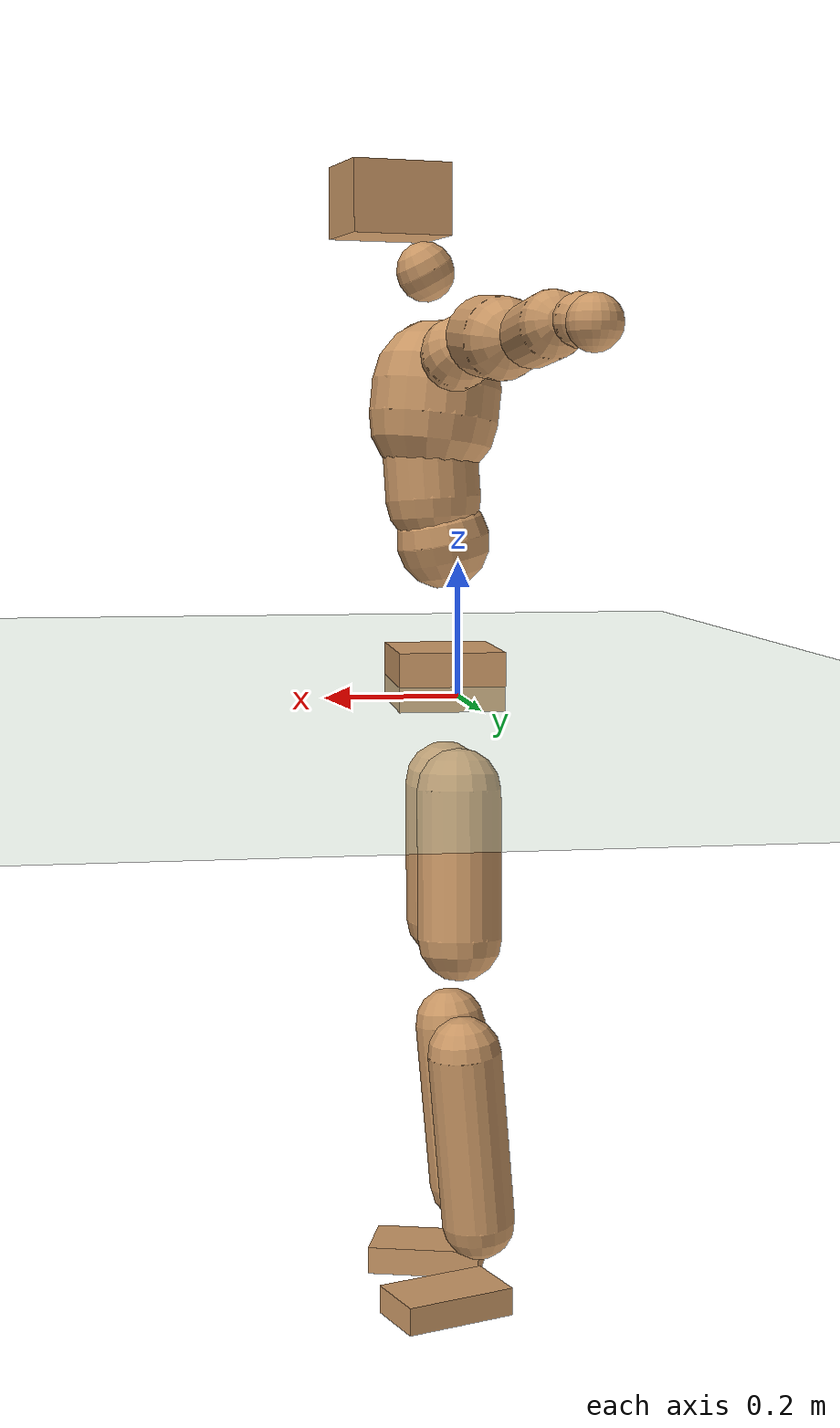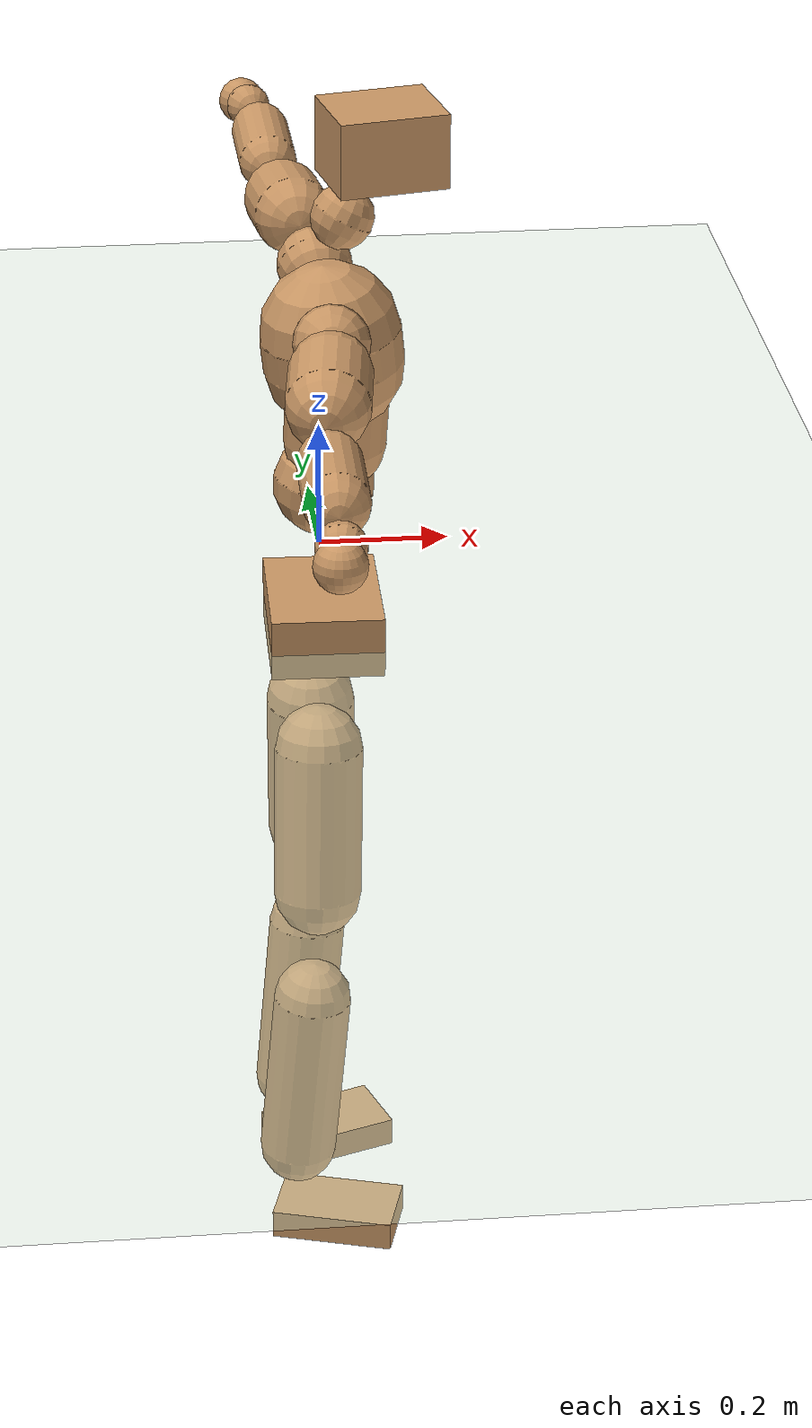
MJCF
<mujoco model="humanoid">
  <compiler coordinate="local" angle="radian"/>
  <default>
    <joint damping="0.0" armature="0.01" stiffness="0.0" limited="true"/>
    <geom conaffinity="1" condim="3" contype="7" margin="0.001" rgba="0.8 0.6 .4 1"/>
  </default>
  <asset>
    <texture type="skybox" builtin="gradient" rgb1=".4 .5 .6" rgb2="0 0 0" width="100" height="100"/>
    <texture builtin="flat" height="1278" mark="cross" markrgb="1 1 1" name="texgeom" random="0.01" rgb1="0.8 0.6 0.4" rgb2="0.8 0.6 0.4" type="cube" width="127"/>
    <texture builtin="checker" height="100" name="texplane" rgb1="0 0 0" rgb2="0.8 0.8 0.8" type="2d" width="100"/>
    <material name="MatPlane" reflectance="0.5" shininess="1" specular="1" texrepeat="60 60" texture="texplane"/>
    <material name="geom" texture="texgeom" texuniform="true"/>
  </asset>
  <worldbody>
    <light cutoff="100" diffuse="1 1 1" dir="-0 0 -1.3" directional="true" exponent="1" pos="0 0 1.3" specular=".1 .1 .1"/>
    <geom conaffinity="1" condim="3" name="floor" pos="0 0 0" rgba="0.8 0.9 0.8 1" size="100 100 .2" type="plane" material="MatPlane"/>
    <body name="Pelvis" pos="-0.004 -0.2593 0.014">
      <freejoint name="Pelvis"/>
      <geom type="box" contype="1" conaffinity="1" density="5359.374324" pos="-0.0140 0.0003 -0.0092" size="0.0839 0.1086 0.0465" quat="0.9999 0.0000 0.0000 -0.0106" name="Pelvis"/>
      <body name="L_Hip" pos="-0.0289 0.0594 -0.089">
        <joint name="L_Hip_x" type="hinge" pos="0 0 0" axis="1 0 0" stiffness="1600" damping="160" armature="0.02" range="-180.0000 180.0000"/>
        <joint name="L_Hip_y" type="hinge" pos="0 0 0" axis="0 1 0" stiffness="1600" damping="160" armature="0.02" range="-180.0000 180.0000"/>
        <joint name="L_Hip_z" type="hinge" pos="0 0 0" axis="0 0 1" stiffness="1600" damping="160" armature="0.02" range="-180.0000 180.0000"/>
        <geom type="capsule" contype="1" conaffinity="1" density="2040.816327" size="0.0674" fromto="0.0013 0.0113 -0.0968 0.0043 0.0389 -0.3335" name="L_Hip"/>
        <body name="L_Knee" pos="0.0056 0.0501 -0.4303">
          <joint name="L_Knee_x" type="hinge" pos="0 0 0" axis="1 0 0" stiffness="1600" damping="160" armature="0.02" range="-180.0000 180.0000"/>
          <joint name="L_Knee_y" type="hinge" pos="0 0 0" axis="0 1 0" stiffness="1600" damping="160" armature="0.02" range="-180.0000 180.0000"/>
          <joint name="L_Knee_z" type="hinge" pos="0 0 0" axis="0 0 1" stiffness="1600" damping="160" armature="0.02" range="-180.0000 180.0000"/>
          <geom type="capsule" contype="1" conaffinity="1" density="1234.567901" size="0.0596" fromto="-0.0078 -0.0028 -0.0892 -0.0328 -0.0120 -0.3758" name="L_Knee"/>
          <body name="L_Ankle" pos="-0.0406 -0.0148 -0.465">
            <joint name="L_Ankle_x" type="hinge" pos="0 0 0" axis="1 0 0" stiffness="1600" damping="160" armature="0.02" range="-180.0000 180.0000"/>
            <joint name="L_Ankle_y" type="hinge" pos="0 0 0" axis="0 1 0" stiffness="1600" damping="160" armature="0.02" range="-180.0000 180.0000"/>
            <joint name="L_Ankle_z" type="hinge" pos="0 0 0" axis="0 0 1" stiffness="1600" damping="160" armature="0.02" range="-180.0000 180.0000"/>
            <geom type="box" contype="1" conaffinity="1" density="999.999977" pos="0.0642 0.0219 -0.0328" size="0.0929 0.0549 0.0229" quat="0.9865 0.0000 0.0000 0.1636" name="L_Ankle"/>
            <body name="L_Toe" pos="0.1283 0.0438 -0.0656">
              <joint name="L_Toe_x" type="hinge" pos="0 0 0" axis="1 0 0" stiffness="1000" damping="100" armature="0.02" range="-180.0000 180.0000"/>
              <joint name="L_Toe_y" type="hinge" pos="0 0 0" axis="0 1 0" stiffness="1000" damping="100" armature="0.02" range="-180.0000 180.0000"/>
              <joint name="L_Toe_z" type="hinge" pos="0 0 0" axis="0 0 1" stiffness="1000" damping="100" armature="0.02" range="-180.0000 180.0000"/>
              <geom type="box" contype="1" conaffinity="1" density="7864163.116314" pos="0.0000 0.0000 0.0339" size="0.0011 0.0027 0.0012" quat="0.9858 0.0000 0.0000 0.1681" name="L_Toe"/>
            </body>
          </body>
        </body>
      </body>
      <body name="R_Hip" pos="-0.026 -0.0623 -0.0965">
        <joint name="R_Hip_x" type="hinge" pos="0 0 0" axis="1 0 0" stiffness="1600" damping="160" armature="0.02" range="-180.0000 180.0000"/>
        <joint name="R_Hip_y" type="hinge" pos="0 0 0" axis="0 1 0" stiffness="1600" damping="160" armature="0.02" range="-180.0000 180.0000"/>
        <joint name="R_Hip_z" type="hinge" pos="0 0 0" axis="0 0 1" stiffness="1600" damping="160" armature="0.02" range="-180.0000 180.0000"/>
        <geom type="capsule" contype="1" conaffinity="1" density="2040.816327" size="0.0664" fromto="-0.0019 -0.0111 -0.0958 -0.0068 -0.0385 -0.3328" name="R_Hip"/>
        <body name="R_Knee" pos="-0.0087 -0.0496 -0.4286">
          <joint name="R_Knee_x" type="hinge" pos="0 0 0" axis="1 0 0" stiffness="1600" damping="160" armature="0.02" range="-180.0000 180.0000"/>
          <joint name="R_Knee_y" type="hinge" pos="0 0 0" axis="0 1 0" stiffness="1600" damping="160" armature="0.02" range="-180.0000 180.0000"/>
          <joint name="R_Knee_z" type="hinge" pos="0 0 0" axis="0 0 1" stiffness="1600" damping="160" armature="0.02" range="-180.0000 180.0000"/>
          <geom type="capsule" contype="1" conaffinity="1" density="1234.567901" size="0.0591" fromto="-0.0071 0.0041 -0.0887 -0.0299 0.0174 -0.3718" name="R_Knee"/>
          <body name="R_Ankle" pos="-0.037 0.0215 -0.4606">
            <joint name="R_Ankle_x" type="hinge" pos="0 0 0" axis="1 0 0" stiffness="1600" damping="160" armature="0.02" range="-180.0000 180.0000"/>
            <joint name="R_Ankle_y" type="hinge" pos="0 0 0" axis="0 1 0" stiffness="1600" damping="160" armature="0.02" range="-180.0000 180.0000"/>
            <joint name="R_Ankle_z" type="hinge" pos="0 0 0" axis="0 0 1" stiffness="1600" damping="160" armature="0.02" range="-180.0000 180.0000"/>
            <geom type="box" contype="1" conaffinity="1" density="1000.000035" pos="0.0688 -0.0202 -0.0341" size="0.0945 0.055 0.0229" quat="0.9898 0.0000 0.0000 -0.1424" name="R_Ankle"/>
            <body name="R_Toe" pos="0.1375 -0.0404 -0.0683">
              <joint name="R_Toe_x" type="hinge" pos="0 0 0" axis="1 0 0" stiffness="1000" damping="100" armature="0.02" range="-180.0000 180.0000"/>
              <joint name="R_Toe_y" type="hinge" pos="0 0 0" axis="0 1 0" stiffness="1000" damping="100" armature="0.02" range="-180.0000 180.0000"/>
              <joint name="R_Toe_z" type="hinge" pos="0 0 0" axis="0 0 1" stiffness="1000" damping="100" armature="0.02" range="-180.0000 180.0000"/>
              <geom type="box" contype="1" conaffinity="1" density="7974562.350913" pos="0.0000 0.0000 0.0357" size="0.0011 0.0026 0.0012" quat="0.9910 0.0000 0.0000 -0.1339" name="R_Toe"/>
            </body>
          </body>
        </body>
      </body>
      <body name="Torso" pos="-0.0294 0.0047 0.1301">
        <joint name="Torso_x" type="hinge" pos="0 0 0" axis="1 0 0" stiffness="2000" damping="200" armature="0.02" range="-180.0000 180.0000"/>
        <joint name="Torso_y" type="hinge" pos="0 0 0" axis="0 1 0" stiffness="2000" damping="200" armature="0.02" range="-180.0000 180.0000"/>
        <joint name="Torso_z" type="hinge" pos="0 0 0" axis="0 0 1" stiffness="2000" damping="200" armature="0.02" range="-180.0000 180.0000"/>
        <geom type="capsule" contype="1" conaffinity="1" density="2040.816327" size="0.0753" fromto="0.0170 0.0023 0.0776 0.0174 0.0024 0.0795" name="Torso"/>
        <body name="Spine" pos="0.0344 0.0048 0.1571">
          <joint name="Spine_x" type="hinge" pos="0 0 0" axis="1 0 0" stiffness="2000" damping="200" armature="0.02" range="-180.0000 180.0000"/>
          <joint name="Spine_y" type="hinge" pos="0 0 0" axis="0 1 0" stiffness="2000" damping="200" armature="0.02" range="-180.0000 180.0000"/>
          <joint name="Spine_z" type="hinge" pos="0 0 0" axis="0 0 1" stiffness="2000" damping="200" armature="0.02" range="-180.0000 180.0000"/>
          <geom type="capsule" contype="1" conaffinity="1" density="2040.816327" size="0.0762" fromto="0.0047 -0.0024 0.0760 -0.0008 0.0004 -0.0123" name="Spine"/>
          <body name="Chest" pos="0.0039 -0.002 0.0638">
            <joint name="Chest_x" type="hinge" pos="0 0 0" axis="1 0 0" stiffness="2000" damping="200" armature="0.02" range="-180.0000 180.0000"/>
            <joint name="Chest_y" type="hinge" pos="0 0 0" axis="0 1 0" stiffness="2000" damping="200" armature="0.02" range="-180.0000 180.0000"/>
            <joint name="Chest_z" type="hinge" pos="0 0 0" axis="0 0 1" stiffness="2000" damping="200" armature="0.02" range="-180.0000 180.0000"/>
            <geom type="capsule" contype="1" conaffinity="1" density="2040.816327" size="0.1034" fromto="-0.0116 -0.0060 0.1025 -0.0059 -0.0030 0.0517" name="Chest"/>
            <body name="Neck" pos="-0.0227 -0.0163 0.227">
              <joint name="Neck_x" type="hinge" pos="0 0 0" axis="1 0 0" stiffness="1000" damping="100" armature="0.02" range="-180.0000 180.0000"/>
              <joint name="Neck_y" type="hinge" pos="0 0 0" axis="0 1 0" stiffness="1000" damping="100" armature="0.02" range="-180.0000 180.0000"/>
              <joint name="Neck_z" type="hinge" pos="0 0 0" axis="0 0 1" stiffness="1000" damping="100" armature="0.02" range="-180.0000 180.0000"/>
              <geom type="capsule" contype="1" conaffinity="1" density="1000" size="0.0461" fromto="0.0276 0.0047 0.0517 0.0286 0.0049 0.0535" name="Neck"/>
              <body name="Head" pos="0.0562 0.0096 0.1052">
                <joint name="Head_x" type="hinge" pos="0 0 0" axis="1 0 0" stiffness="1000" damping="100" armature="0.02" range="-180.0000 180.0000"/>
                <joint name="Head_y" type="hinge" pos="0 0 0" axis="0 1 0" stiffness="1000" damping="100" armature="0.02" range="-180.0000 180.0000"/>
                <joint name="Head_z" type="hinge" pos="0 0 0" axis="0 0 1" stiffness="1000" damping="100" armature="0.02" range="-180.0000 180.0000"/>
                <geom type="box" contype="1" conaffinity="1" density="2250.000085" pos="0.0291 0.0058 0.0536" size="0.08 0.0653 0.0553" quat="0.9952 0.0000 0.0000 0.0982" name="Head"/>
              </body>
            </body>
            <body name="L_Thorax" pos="-0.011 0.0777 0.1192">
              <joint name="L_Thorax_x" type="hinge" pos="0 0 0" axis="1 0 0" stiffness="1000" damping="100" armature="0.02" range="-180.0000 180.0000"/>
              <joint name="L_Thorax_y" type="hinge" pos="0 0 0" axis="0 1 0" stiffness="1000" damping="100" armature="0.02" range="-180.0000 180.0000"/>
              <joint name="L_Thorax_z" type="hinge" pos="0 0 0" axis="0 0 1" stiffness="1000" damping="100" armature="0.02" range="-180.0000 180.0000"/>
              <geom type="capsule" contype="1" conaffinity="1" density="1000" size="0.0561" fromto="-0.0095 0.0633 0.0254 -0.0098 0.0652 0.0261" name="L_Thorax"/>
              <body name="L_Shoulder" pos="-0.0194 0.1285 0.0515">
                <joint name="L_Shoulder_x" type="hinge" pos="0 0 0" axis="1 0 0" stiffness="1000" damping="100" armature="0.02" range="-720.0000 720.0000"/>
                <joint name="L_Shoulder_y" type="hinge" pos="0 0 0" axis="0 1 0" stiffness="1000" damping="100" armature="0.02" range="-720.0000 720.0000"/>
                <joint name="L_Shoulder_z" type="hinge" pos="0 0 0" axis="0 0 1" stiffness="1000" damping="100" armature="0.02" range="-720.0000 720.0000"/>
                <geom type="capsule" contype="1" conaffinity="1" density="1000" size="0.0592" fromto="-0.0077 0.0885 -0.0076 -0.0161 0.1854 -0.0160" name="L_Shoulder"/>
                <body name="L_Elbow" pos="-0.0238 0.2739 -0.0236">
                  <joint name="L_Elbow_x" type="hinge" pos="0 0 0" axis="1 0 0" stiffness="1000" damping="100" armature="0.02" range="-720.0000 720.0000"/>
                  <joint name="L_Elbow_y" type="hinge" pos="0 0 0" axis="0 1 0" stiffness="1000" damping="100" armature="0.02" range="-720.0000 720.0000"/>
                  <joint name="L_Elbow_z" type="hinge" pos="0 0 0" axis="0 0 1" stiffness="1000" damping="100" armature="0.02" range="-720.0000 720.0000"/>
                  <geom type="capsule" contype="1" conaffinity="1" density="1000" size="0.0448" fromto="-0.0016 0.0746 0.0038 -0.0043 0.2007 0.0104" name="L_Elbow"/>
                  <body name="L_Wrist" pos="-0.006 0.2754 0.0142">
                    <joint name="L_Wrist_x" type="hinge" pos="0 0 0" axis="1 0 0" stiffness="600" damping="60" armature="0.02" range="-180.0000 180.0000"/>
                    <joint name="L_Wrist_y" type="hinge" pos="0 0 0" axis="0 1 0" stiffness="600" damping="60" armature="0.02" range="-180.0000 180.0000"/>
                    <joint name="L_Wrist_z" type="hinge" pos="0 0 0" axis="0 0 1" stiffness="600" damping="60" armature="0.02" range="-180.0000 180.0000"/>
                    <geom type="capsule" contype="1" conaffinity="1" density="1000" size="0.0346" fromto="-0.0077 0.0428 -0.0055 -0.0081 0.0447 -0.0057" name="L_Wrist"/>
                    <body name="L_Hand" pos="-0.0158 0.0875 -0.0112">
                      <joint name="L_Hand_x" type="hinge" pos="0 0 0" axis="1 0 0" stiffness="600" damping="60" armature="0.02" range="-180.0000 180.0000"/>
                      <joint name="L_Hand_y" type="hinge" pos="0 0 0" axis="0 1 0" stiffness="600" damping="60" armature="0.02" range="-180.0000 180.0000"/>
                      <joint name="L_Hand_z" type="hinge" pos="0 0 0" axis="0 0 1" stiffness="600" damping="60" armature="0.02" range="-180.0000 180.0000"/>
                      <geom type="sphere" contype="1" conaffinity="1" density="1000" size="0.0361" pos="0.0000 0.0000 0.0000" name="L_Hand"/>
                    </body>
                  </body>
                </body>
              </body>
            </body>
            <body name="R_Thorax" pos="-0.0188 -0.0884 0.1167">
              <joint name="R_Thorax_x" type="hinge" pos="0 0 0" axis="1 0 0" stiffness="1000" damping="100" armature="0.02" range="-180.0000 180.0000"/>
              <joint name="R_Thorax_y" type="hinge" pos="0 0 0" axis="0 1 0" stiffness="1000" damping="100" armature="0.02" range="-180.0000 180.0000"/>
              <joint name="R_Thorax_z" type="hinge" pos="0 0 0" axis="0 0 1" stiffness="1000" damping="100" armature="0.02" range="-180.0000 180.0000"/>
              <geom type="capsule" contype="1" conaffinity="1" density="1000" size="0.0556" fromto="-0.0039 -0.0579 0.0264 -0.0040 -0.0598 0.0273" name="R_Thorax"/>
              <body name="R_Shoulder" pos="-0.0078 -0.1177 0.0537">
                <joint name="R_Shoulder_x" type="hinge" pos="0 0 0" axis="1 0 0" stiffness="1000" damping="100" armature="0.02" range="-720.0000 720.0000"/>
                <joint name="R_Shoulder_y" type="hinge" pos="0 0 0" axis="0 1 0" stiffness="1000" damping="100" armature="0.02" range="-720.0000 720.0000"/>
                <joint name="R_Shoulder_z" type="hinge" pos="0 0 0" axis="0 0 1" stiffness="1000" damping="100" armature="0.02" range="-720.0000 720.0000"/>
                <geom type="capsule" contype="1" conaffinity="1" density="1000" size="0.0595" fromto="-0.0116 -0.0884 -0.0075 -0.0241 -0.1836 -0.0156" name="R_Shoulder"/>
                <body name="R_Elbow" pos="-0.0357 -0.272 -0.0232">
                  <joint name="R_Elbow_x" type="hinge" pos="0 0 0" axis="1 0 0" stiffness="1000" damping="100" armature="0.02" range="-720.0000 720.0000"/>
                  <joint name="R_Elbow_y" type="hinge" pos="0 0 0" axis="0 1 0" stiffness="1000" damping="100" armature="0.02" range="-720.0000 720.0000"/>
                  <joint name="R_Elbow_z" type="hinge" pos="0 0 0" axis="0 0 1" stiffness="1000" damping="100" armature="0.02" range="-720.0000 720.0000"/>
                  <geom type="capsule" contype="1" conaffinity="1" density="1000" size="0.0449" fromto="-0.0015 -0.0749 0.0013 -0.0041 -0.2030 0.0036" name="R_Elbow"/>
                  <body name="R_Wrist" pos="-0.0055 -0.2779 0.005">
                    <joint name="R_Wrist_x" type="hinge" pos="0 0 0" axis="1 0 0" stiffness="600" damping="60" armature="0.02" range="-180.0000 180.0000"/>
                    <joint name="R_Wrist_y" type="hinge" pos="0 0 0" axis="0 1 0" stiffness="600" damping="60" armature="0.02" range="-180.0000 180.0000"/>
                    <joint name="R_Wrist_z" type="hinge" pos="0 0 0" axis="0 0 1" stiffness="600" damping="60" armature="0.02" range="-180.0000 180.0000"/>
                    <geom type="capsule" contype="1" conaffinity="1" density="1000" size="0.0343" fromto="-0.0049 -0.0428 -0.0042 -0.0052 -0.0448 -0.0044" name="R_Wrist"/>
                    <body name="R_Hand" pos="-0.0101 -0.0876 -0.0085">
                      <joint name="R_Hand_x" type="hinge" pos="0 0 0" axis="1 0 0" stiffness="600" damping="60" armature="0.02" range="-180.0000 180.0000"/>
                      <joint name="R_Hand_y" type="hinge" pos="0 0 0" axis="0 1 0" stiffness="600" damping="60" armature="0.02" range="-180.0000 180.0000"/>
                      <joint name="R_Hand_z" type="hinge" pos="0 0 0" axis="0 0 1" stiffness="600" damping="60" armature="0.02" range="-180.0000 180.0000"/>
                      <geom type="sphere" contype="1" conaffinity="1" density="1000" size="0.0356" pos="0.0000 0.0000 0.0000" name="R_Hand"/>
                    </body>
                  </body>
                </body>
              </body>
            </body>
          </body>
        </body>
      </body>
    </body>
  </worldbody>
  <actuator>
    <motor name="L_Hip_x" joint="L_Hip_x" gear="500"/>
    <motor name="L_Hip_y" joint="L_Hip_y" gear="500"/>
    <motor name="L_Hip_z" joint="L_Hip_z" gear="500"/>
    <motor name="L_Knee_x" joint="L_Knee_x" gear="500"/>
    <motor name="L_Knee_y" joint="L_Knee_y" gear="500"/>
    <motor name="L_Knee_z" joint="L_Knee_z" gear="500"/>
    <motor name="L_Ankle_x" joint="L_Ankle_x" gear="500"/>
    <motor name="L_Ankle_y" joint="L_Ankle_y" gear="500"/>
    <motor name="L_Ankle_z" joint="L_Ankle_z" gear="500"/>
    <motor name="L_Toe_x" joint="L_Toe_x" gear="500"/>
    <motor name="L_Toe_y" joint="L_Toe_y" gear="500"/>
    <motor name="L_Toe_z" joint="L_Toe_z" gear="500"/>
    <motor name="R_Hip_x" joint="R_Hip_x" gear="500"/>
    <motor name="R_Hip_y" joint="R_Hip_y" gear="500"/>
    <motor name="R_Hip_z" joint="R_Hip_z" gear="500"/>
    <motor name="R_Knee_x" joint="R_Knee_x" gear="500"/>
    <motor name="R_Knee_y" joint="R_Knee_y" gear="500"/>
    <motor name="R_Knee_z" joint="R_Knee_z" gear="500"/>
    <motor name="R_Ankle_x" joint="R_Ankle_x" gear="500"/>
    <motor name="R_Ankle_y" joint="R_Ankle_y" gear="500"/>
    <motor name="R_Ankle_z" joint="R_Ankle_z" gear="500"/>
    <motor name="R_Toe_x" joint="R_Toe_x" gear="500"/>
    <motor name="R_Toe_y" joint="R_Toe_y" gear="500"/>
    <motor name="R_Toe_z" joint="R_Toe_z" gear="500"/>
    <motor name="Torso_x" joint="Torso_x" gear="500"/>
    <motor name="Torso_y" joint="Torso_y" gear="500"/>
    <motor name="Torso_z" joint="Torso_z" gear="500"/>
    <motor name="Spine_x" joint="Spine_x" gear="500"/>
    <motor name="Spine_y" joint="Spine_y" gear="500"/>
    <motor name="Spine_z" joint="Spine_z" gear="500"/>
    <motor name="Chest_x" joint="Chest_x" gear="500"/>
    <motor name="Chest_y" joint="Chest_y" gear="500"/>
    <motor name="Chest_z" joint="Chest_z" gear="500"/>
    <motor name="Neck_x" joint="Neck_x" gear="500"/>
    <motor name="Neck_y" joint="Neck_y" gear="500"/>
    <motor name="Neck_z" joint="Neck_z" gear="500"/>
    <motor name="Head_x" joint="Head_x" gear="500"/>
    <motor name="Head_y" joint="Head_y" gear="500"/>
    <motor name="Head_z" joint="Head_z" gear="500"/>
    <motor name="L_Thorax_x" joint="L_Thorax_x" gear="500"/>
    <motor name="L_Thorax_y" joint="L_Thorax_y" gear="500"/>
    <motor name="L_Thorax_z" joint="L_Thorax_z" gear="500"/>
    <motor name="L_Shoulder_x" joint="L_Shoulder_x" gear="500"/>
    <motor name="L_Shoulder_y" joint="L_Shoulder_y" gear="500"/>
    <motor name="L_Shoulder_z" joint="L_Shoulder_z" gear="500"/>
    <motor name="L_Elbow_x" joint="L_Elbow_x" gear="500"/>
    <motor name="L_Elbow_y" joint="L_Elbow_y" gear="500"/>
    <motor name="L_Elbow_z" joint="L_Elbow_z" gear="500"/>
    <motor name="L_Wrist_x" joint="L_Wrist_x" gear="500"/>
    <motor name="L_Wrist_y" joint="L_Wrist_y" gear="500"/>
    <motor name="L_Wrist_z" joint="L_Wrist_z" gear="500"/>
    <motor name="L_Hand_x" joint="L_Hand_x" gear="500"/>
    <motor name="L_Hand_y" joint="L_Hand_y" gear="500"/>
    <motor name="L_Hand_z" joint="L_Hand_z" gear="500"/>
    <motor name="R_Thorax_x" joint="R_Thorax_x" gear="500"/>
    <motor name="R_Thorax_y" joint="R_Thorax_y" gear="500"/>
    <motor name="R_Thorax_z" joint="R_Thorax_z" gear="500"/>
    <motor name="R_Shoulder_x" joint="R_Shoulder_x" gear="500"/>
    <motor name="R_Shoulder_y" joint="R_Shoulder_y" gear="500"/>
    <motor name="R_Shoulder_z" joint="R_Shoulder_z" gear="500"/>
    <motor name="R_Elbow_x" joint="R_Elbow_x" gear="500"/>
    <motor name="R_Elbow_y" joint="R_Elbow_y" gear="500"/>
    <motor name="R_Elbow_z" joint="R_Elbow_z" gear="500"/>
    <motor name="R_Wrist_x" joint="R_Wrist_x" gear="500"/>
    <motor name="R_Wrist_y" joint="R_Wrist_y" gear="500"/>
    <motor name="R_Wrist_z" joint="R_Wrist_z" gear="500"/>
    <motor name="R_Hand_x" joint="R_Hand_x" gear="500"/>
    <motor name="R_Hand_y" joint="R_Hand_y" gear="500"/>
    <motor name="R_Hand_z" joint="R_Hand_z" gear="500"/>
  </actuator>
  <contact>
    <exclude body1="Torso" body2="Chest"/>
    <exclude body1="Head" body2="Chest"/>
    <exclude body1="R_Knee" body2="R_Toe"/>
    <exclude body1="R_Knee" body2="L_Ankle"/>
    <exclude body1="R_Knee" body2="L_Toe"/>
    <exclude body1="L_Knee" body2="L_Toe"/>
    <exclude body1="L_Knee" body2="R_Ankle"/>
    <exclude body1="L_Knee" body2="R_Toe"/>
    <exclude body1="L_Shoulder" body2="Chest"/>
    <exclude body1="R_Shoulder" body2="Chest"/>
  </contact>
  <sensor/>
  <size njmax="700" nconmax="700"/>
</mujoco>
